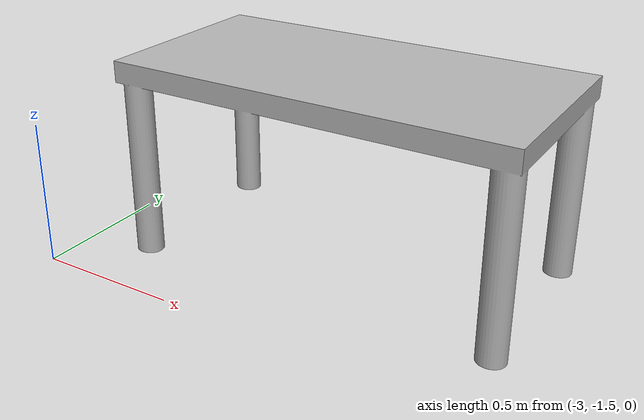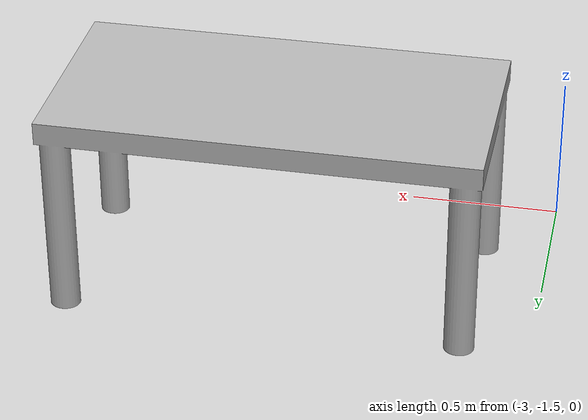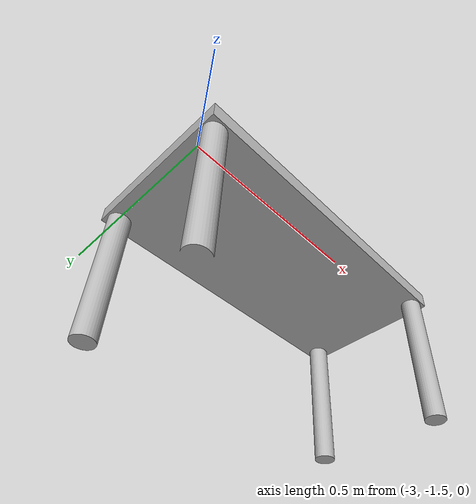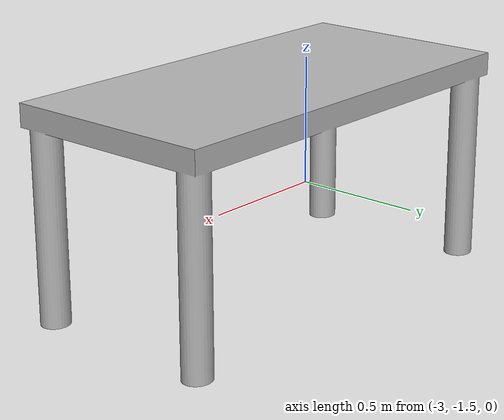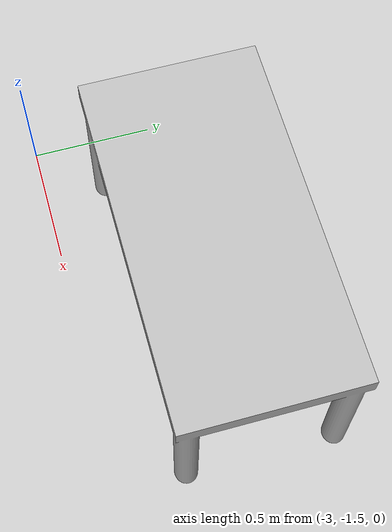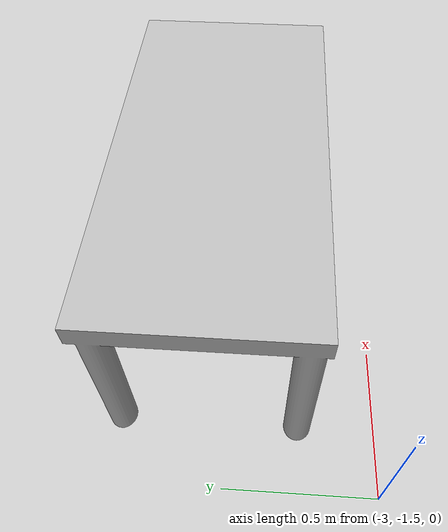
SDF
<?xml version="1.0" ?>
<sdf version="1.5">
  <model name="scene">
    <link name="link">
      <collision name="collision">
        <geometry>
         <mesh>
           <uri>model://scene/meshes/table.dae</uri>
          </mesh>
        </geometry>
      </collision>
      <visual name="visual">
        <geometry>
          <mesh>
            <uri>model://scene/meshes/table.dae</uri>
          </mesh>
        </geometry>
      </visual>
    </link>
  </model>
</sdf>
